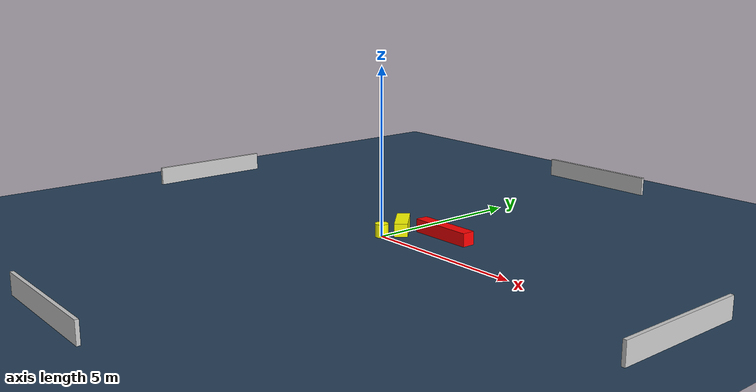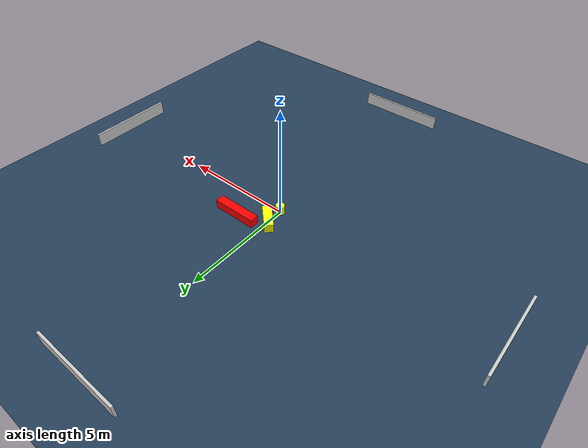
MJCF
<?xml version="1.0" ?>
<mujoco model="generated_environment">
  <option timestep="0.01" integrator="RK4" cone="elliptic"/>
  <default>
    <geom density="1"/>
  </default>
  <asset>
    <texture builtin="gradient" height="3072" rgb1="0.3 0.5 0.7" rgb2="0 0 0" type="skybox" width="512"/>
    <texture builtin="checker" height="300" mark="edge" markrgb="0.8 0.8 0.8" name="groundplane" rgb1="0.2 0.3 0.4" rgb2="0.1 0.2 0.3" type="2d" width="300"/>
    <material name="groundplane" reflectance="0.2" texrepeat="5 5" texture="groundplane" texuniform="true"/>
    <material name="robot" rgba="0.0 1.0 0.0 1"/>
  </asset>
  <worldbody>
    <light dir="0 0 -1" directional="true" pos="0 0 1.5"/>
    <geom condim="4" friction="1.0 0.005 0.001" material="groundplane" name="floor" size="0 0 0.05" type="plane"/>
    <body name="walls">
      <geom name="wall_1" condim="4" pos="-10 0 0.3" rgba="0.8 0.8 0.8 1" size="0.05 2 0.3" type="box"/>
      <geom name="wall_2" condim="4" pos="10 0 0.3" rgba="0.8 0.8 0.8 1" size="0.05 2 0.3" type="box"/>
      <geom name="wall_3" condim="4" pos="0 -10 0.3" rgba="0.8 0.8 0.8 1" size="2 0.05 0.3" type="box"/>
      <geom name="wall_4" condim="4" pos="0 10 0.3" rgba="0.8 0.8 0.8 1" size="2 0.05 0.3" type="box"/>
    </body>
    <site name="origin_x" pos="0.1 0 0.0" rgba="1 0 0 1" size="0.05" type="sphere"/>
    <site name="origin_y" pos="0 0.1 0" rgba="0 1 0 1" size="0.05" type="sphere"/>
    <site name="origin_z" pos="0 0 0.1" rgba="0 0 1 1" size="0.05" type="sphere"/>

    <body name="robot">
      <joint name="joint_x" type="slide" pos="0 0 0" axis="1 0 0"/>
      <joint name="joint_y" type="slide" pos="0 0 0" axis="0 1 0"/>
      <geom name="robot" type="cylinder" pos="0.0 0.0 0.2" size="0.2 0.2" mass="5.0" friction="1.0 0.005 0.0001" condim="4" rgba="1 1 0 1"/>
      <site name="sensor_ball"/>
    </body>

    <body name="obstacle_1_static">
      <geom name="obstacle_1_static" condim="4" pos="1.3 1.3 0.2" euler="0 0 0" friction="1.0 0.005 0.001" rgba="1 0 0 1" size="1.0 0.2 0.2" type="box"/>
    </body>

    <body name="obstacle_1_movable">
      <geom name="obstacle_1_movable" condim="4" pos="-0.0 0.8 0.2" euler="0 0 -45" friction="1.0 0.005 0.001" rgba="1 1 0 1" size="0.6 0.2 0.2" type="box" mass="0.2"/>
      <joint type="free"/>
    </body>

  </worldbody>
  <actuator>
    <motor name="actuator_x" joint="joint_x" gear="1" ctrlrange="-1 1"/>
    <motor name="actuator_y" joint="joint_y" gear="1" ctrlrange="-1 1"/>
  </actuator>
</mujoco>
